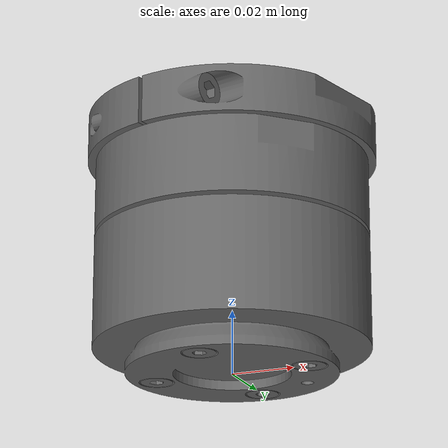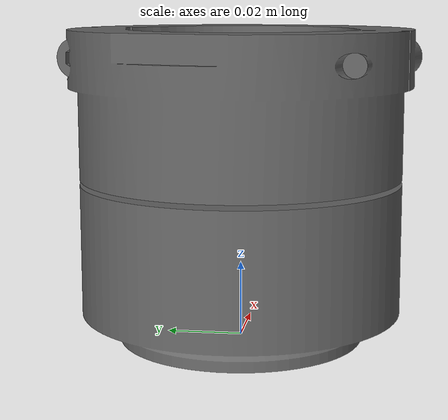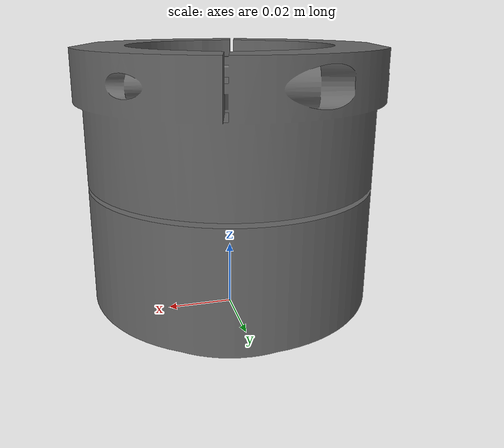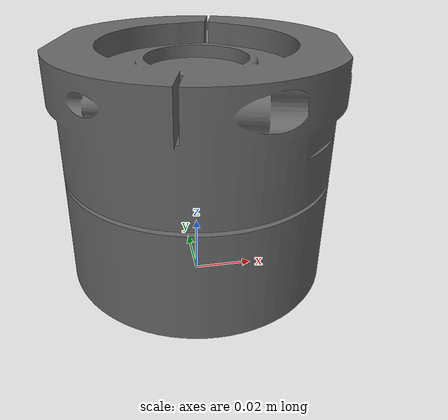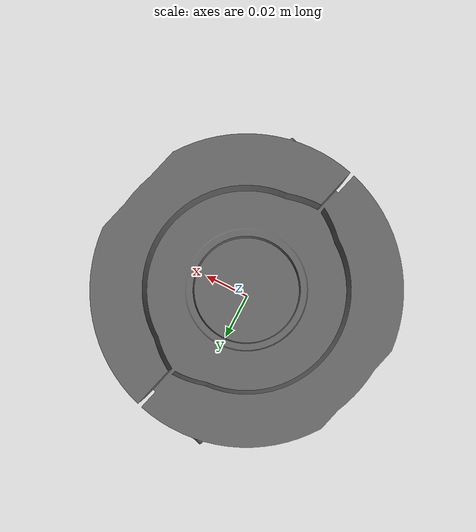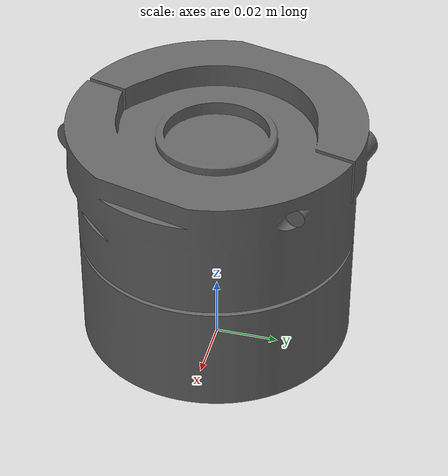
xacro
<?xml version="1.0"?>
<robot xmlns:xacro="http://www.ros.org/wiki/xacro"
       name="ati_ftm115" >

  <!-- ati ftm115 -->
  <xacro:include filename="$(find ati_force_torque)/description/urdf/macros/ftm115.urdf.xacro" />

  <!-- Used for fixing sensor to Gazebo -->
  <link name="base_link"/>

  <!-- sensor -->
  <xacro:ati_ftm115 name="fts" parent="base_link">
      <origin xyz="0 0 0" rpy="0 0 0" />
  </xacro:ati_ftm115>

</robot>

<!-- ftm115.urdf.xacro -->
<robot xmlns:xacro="http://www.ros.org/wiki/xacro">

    <xacro:macro name="ati_ftm115" params="parent name *origin">

        <joint name="${name}_base_joint" type="fixed">
            <xacro:insert_block name="origin" />
            <parent link="${parent}"/>
            <child link="${name}_base_link" />
        </joint>

        <link name="${name}_base_link">
            <inertial>
                <mass value="0.01" />
                <origin xyz="0 0 0" />
                <inertia ixx="0.001" ixy="0.0" ixz="0.0" iyy="0.001" iyz="0.0" izz="0.001" />
            </inertial>
            <visual>
                <origin xyz="0 0 0" rpy="0 0 ${-pi*3/4}" />
                <geometry>
                <mesh filename="package://ati_force_torque/description/meshes/ftm115.dae" />
                </geometry>
            </visual>
            <collision>
                <origin xyz="0 0 0" rpy="0 0 ${-pi*3/4}" />
                <geometry>
                    <mesh filename="package://ati_force_torque/description/meshes/ftm115.stl" />
                </geometry>
            </collision>
        </link>

        <joint name="${name}_reference_joint" type="fixed">
            <origin xyz="0 0 ${0.0749-0.01715}" rpy="0 0 ${-pi/4}" />
            <parent link="${name}_base_link"/>
            <child link="${name}_reference_link" />
        </joint>

        <link name="${name}_reference_link">
        </link>

        <joint name="${name}_tool_joint" type="fixed">
            <origin xyz="0 0 0.0749" rpy="0 0 ${-pi/12}" />
            <parent link="${name}_base_link"/>
            <child link="${name}_tool_link" />
        </joint>

        <link name="${name}_tool_link"/>

  </xacro:macro>

</robot>
